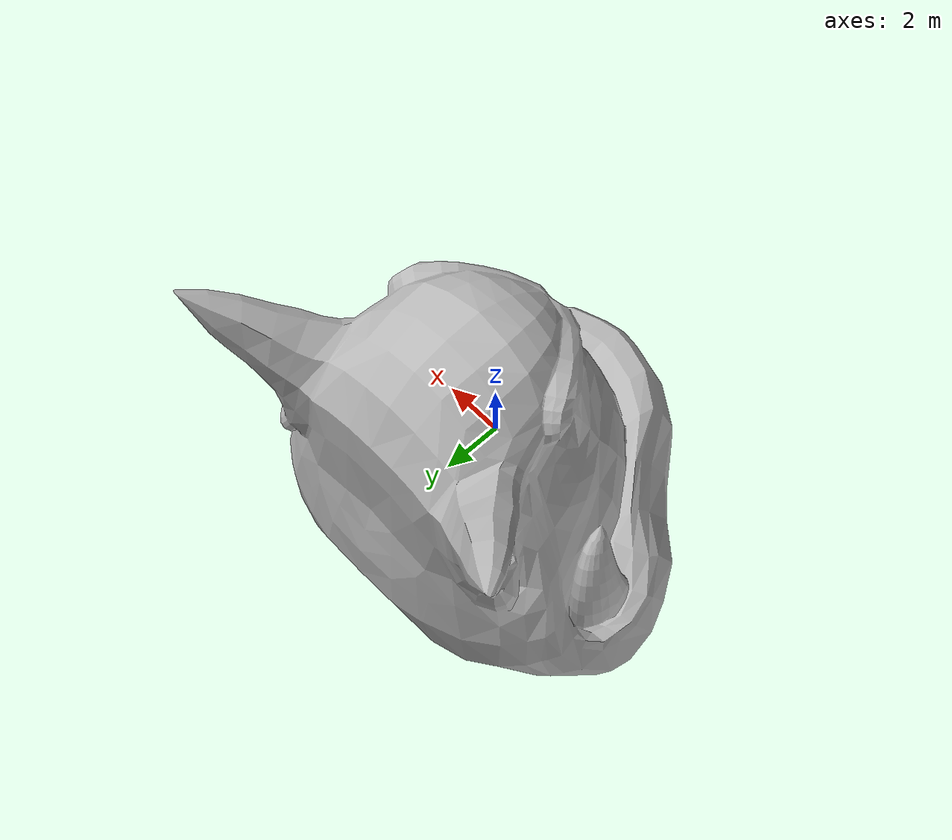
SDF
<?xml version="1.0" ?>
<sdf version="1.4">
  <model name="ogrehead">
		<static> true </static>
		<link name="link">
			<inertial>
				<mass> 0.1 </mass>
			</inertial>
			<collision name="collision">
				<geometry>
					<mesh>
						<uri>./models/ogrehead/meshes/ogrehead.dae </uri>
						<scale> 0.25 0.25 0.25 </scale>
					</mesh>
				</geometry>
			</collision>
			<visual name="visual">
				<geometry>
					<mesh>
						<uri>./models/ogrehead/meshes/ogrehead.dae </uri>
						<scale> 0.25 0.25 0.25 </scale>
					</mesh>
				</geometry>
			</visual>
		</link>
	</model>
</sdf>
